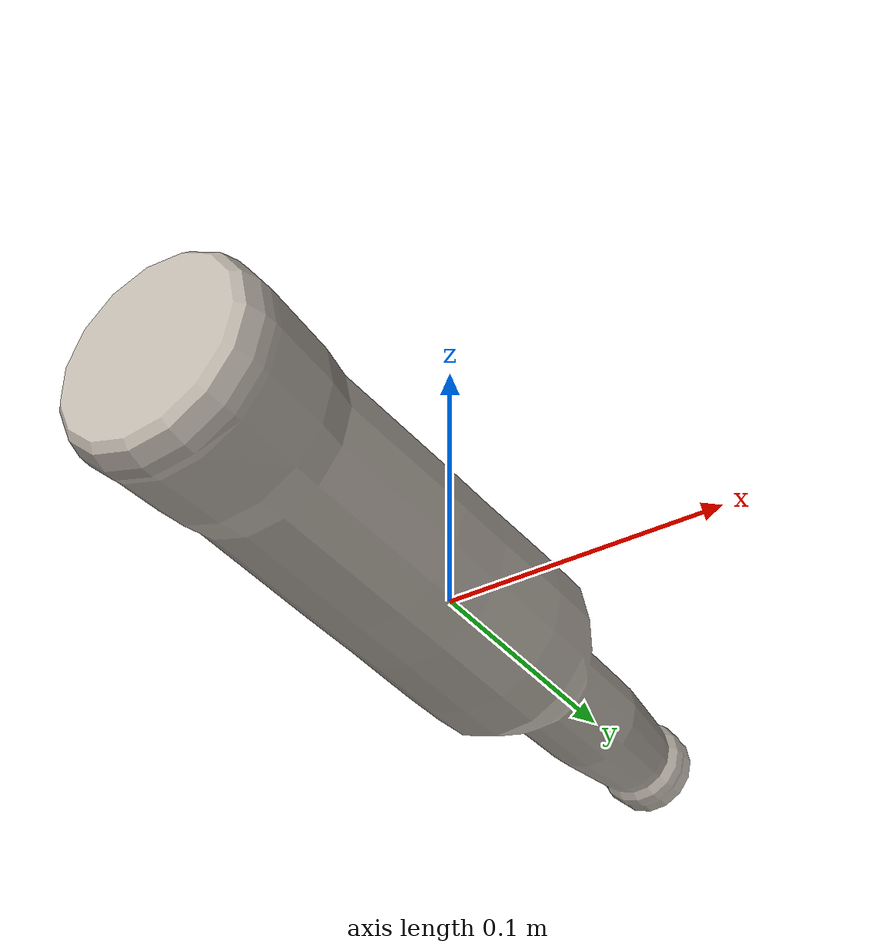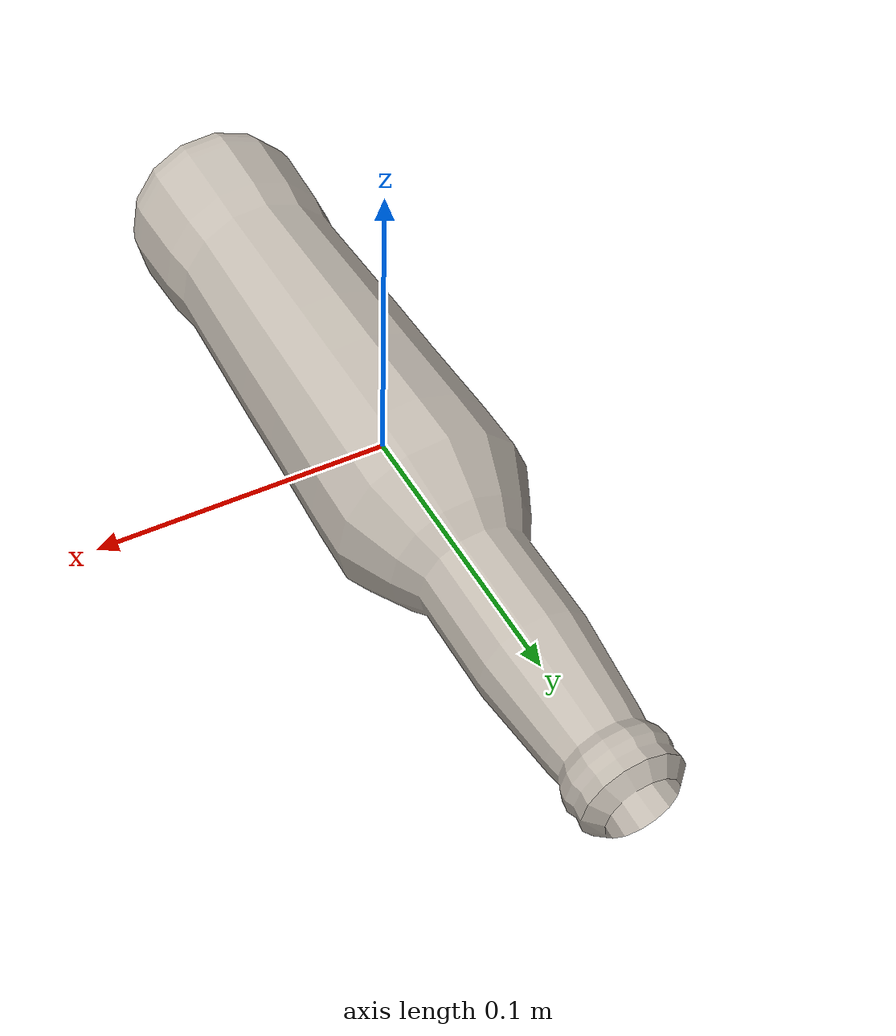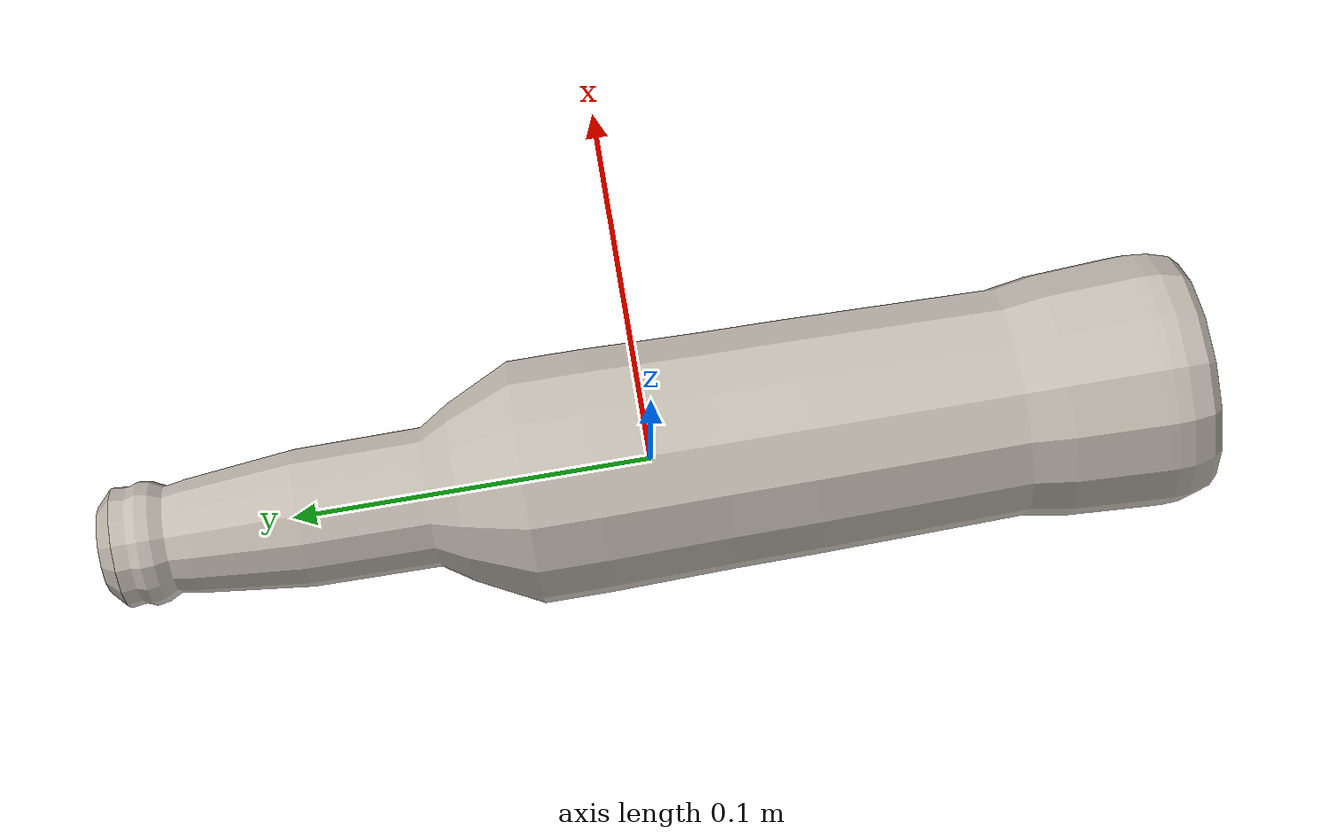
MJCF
<mujoco model="vase_4f383fcc">
  <compiler angle="radian"/>
  <asset>
    <texture type="2d" name="vase_4f383fcc_tex" file="vase_4f383fcc_visual_0.png"/>
    <material name="vase_4f383fcc_mat" texture="vase_4f383fcc_tex"/>
    <mesh name="vase_4f383fcc_visual" content_type="model/obj" file="vase_4f383fcc_visual.obj" scale="-1 1.21292 1"/>
    <mesh name="vase_4f383fcc_c0" content_type="model/obj" file="vase_4f383fcc_c0.obj" scale="-1 1.21292 1"/>
    <mesh name="vase_4f383fcc_c1" content_type="model/obj" file="vase_4f383fcc_c1.obj" scale="-1 1.21292 1"/>
  </asset>
  <worldbody>
    <body name="vase_4f383fcc">
      <freejoint/>
      <geom name="vase_4f383fcc_visual" type="mesh" mesh="vase_4f383fcc_visual" mass="1e-8" contype="0" conaffinity="0" group="2" material="vase_4f383fcc_mat"/>
      <geom name="vase_4f383fcc_c0" type="mesh" mesh="vase_4f383fcc_c0" group="3" density="439.182" friction="0.9 0.05 0.005" condim="4" rgba="0.4 0.5 0.9 0.35"/>
      <geom name="vase_4f383fcc_c1" type="mesh" mesh="vase_4f383fcc_c1" group="3" density="439.182" friction="0.9 0.05 0.005" condim="4" rgba="0.4 0.5 0.9 0.35"/>
    </body>
  </worldbody>
</mujoco>
